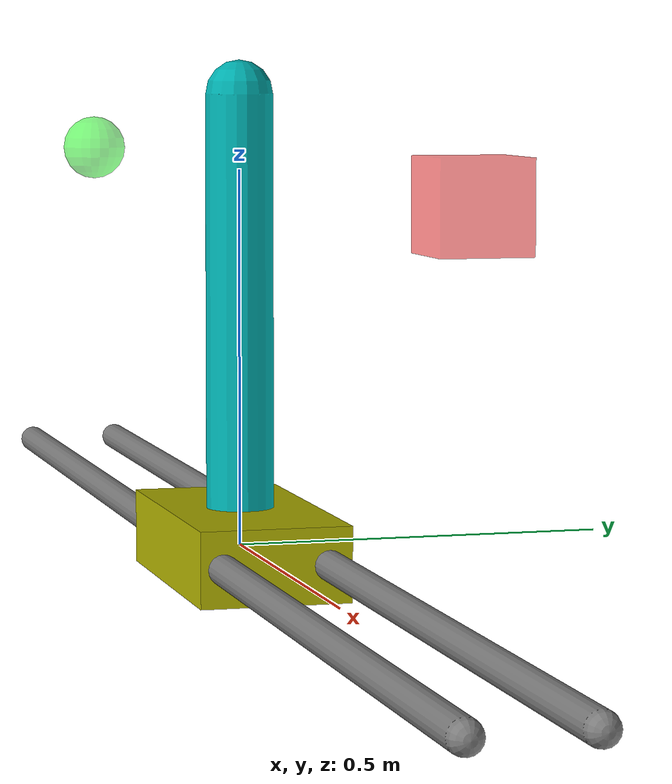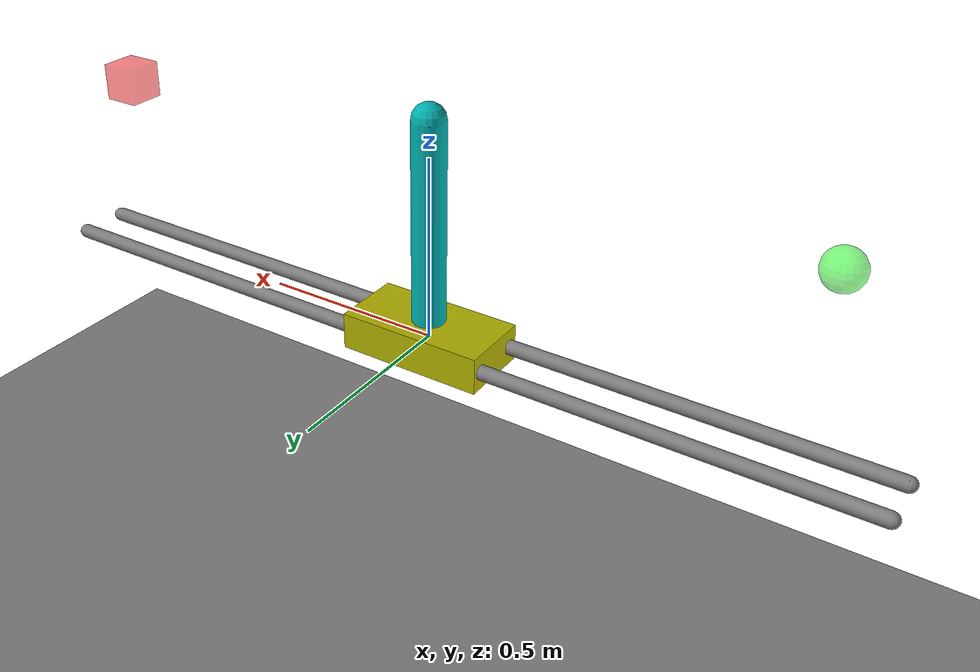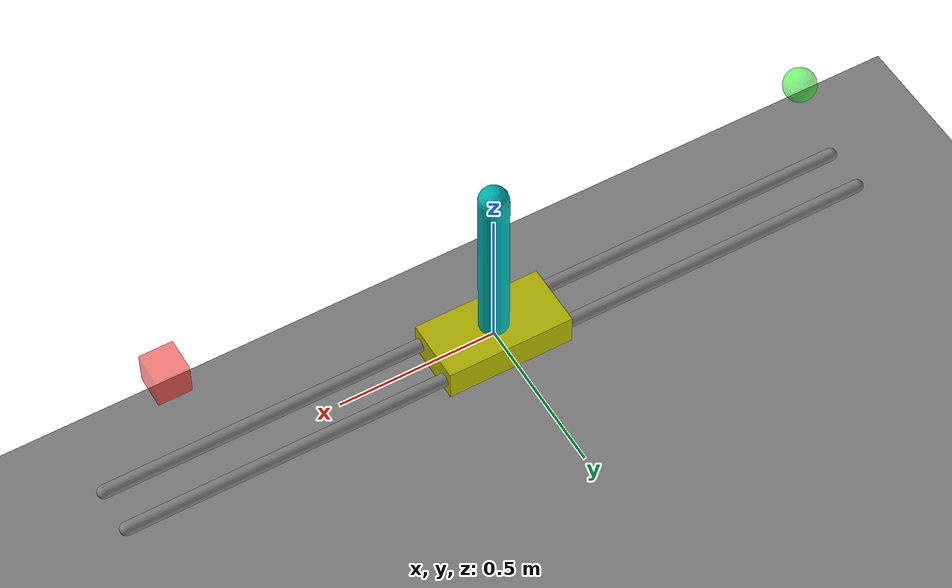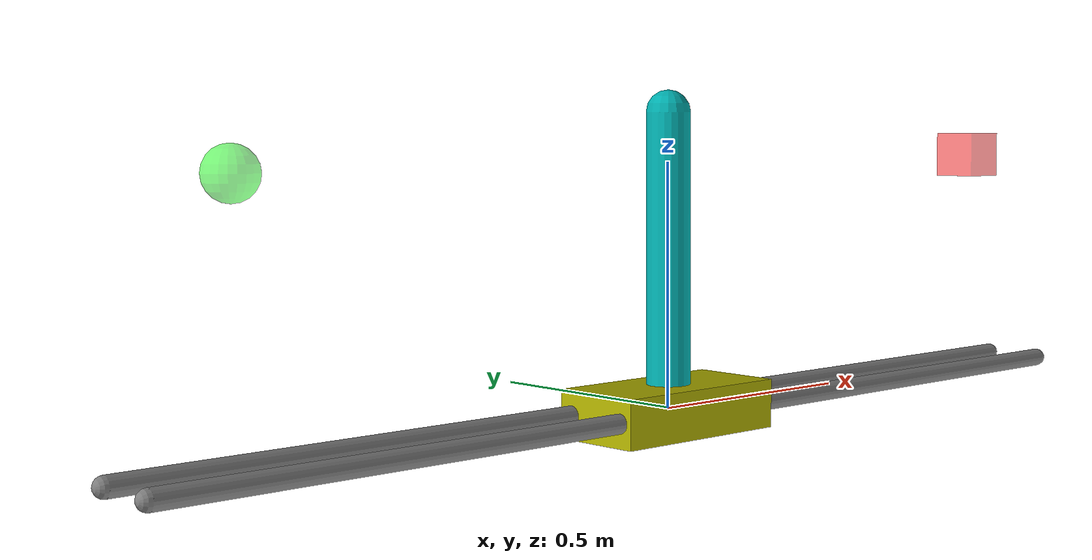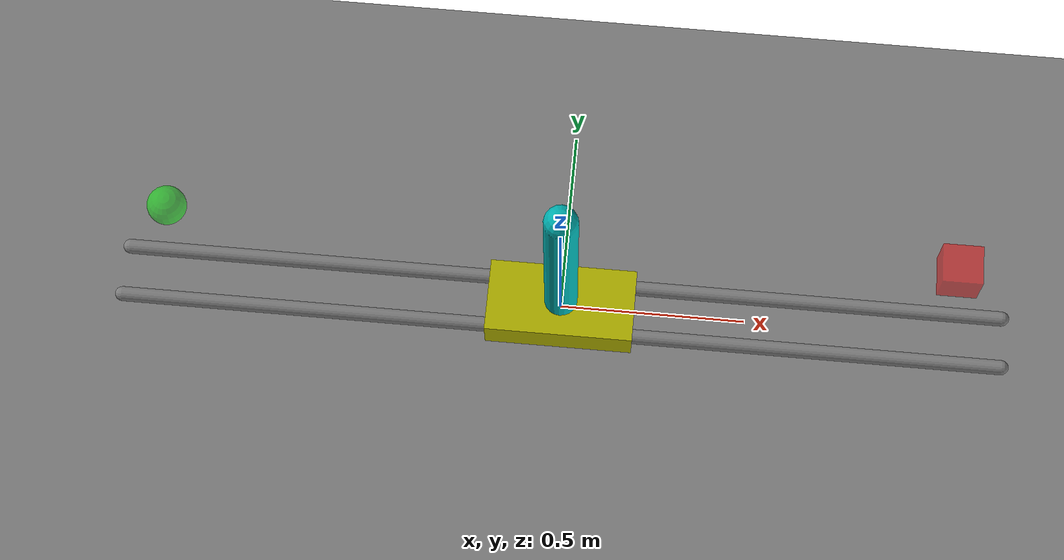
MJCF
<mujoco model='test_cartpole'>
    <compiler inertiafromgeom='true' coordinate='local' />

    <size nkey="1" />

    <custom>
        <numeric name="control_timestep" data="0.04" />
        <numeric name="three_numbers" data="1.0 2.0 3.0" />
    </custom>

    <option timestep='0.01' />

    <default>
        <joint damping='0.05' solreflimit='.08 1' />
        <geom contype='0' friction='1 0.1 0.1' />
    </default>

    <worldbody>
        <camera name='fixed' pos='0 -2.5 0' quat='0.707 0.707 0 0' />
        <geom name='floor' pos='0 0 -1' size='4 4 4' type='plane' />
        <geom name='rail1' type='capsule' pos='0 .07 0' quat='0.707 0 0.707 0'
            size='0.02 1.2' />
        <geom name='rail2' type='capsule' pos='0 -.07 0' quat='0.707 0 0.707 0'
            size='0.02 1.2' />
        <body name='cart' pos='0 0 0'>
            <camera name='cart' pos='0 -2.5 0' quat='0.707 0.707 0 0' />
            <joint name='slider' type='slide' limited='true' pos='0 0 0'
                axis='1 0 0' range='-1 1' />
            <geom name='cart' type='box' pos='0 0 0'
                size='0.2 0.1 0.05' rgba='0.7 0.7 0 1' />
            <site name='cart sensor' type='box' pos='0 0 0'
                size='0.2 0.1 0.05' rgba='0.7 0.7 0 0' />
            <body name='pole' pos='0 0 0'>
                <camera name='pole' pos='0 -2.5 0' quat='0.707 0.707 0 0' />
                <joint name='hinge' type='hinge' pos='0 0 0' axis='0 1 0' />
                <geom name='cpole' type='capsule' fromto='0 0 0 0 0 0.6'
                    size='0.045 0.3' rgba='0 0.7 0.7 1' />
                <site type='sphere' size='.01' name='tip' pos='.001 0 .6' />
            </body>
        </body>
        <body name='mocap1' pos='1 0 0.5' mocap='true'>
            <geom name='mocap_cube' type='box' size='0.05 0.05 0.05' rgba='1 0 0 0.5' />
        </body>
        <body name='mocap2' pos='-1 0 0.5' mocap='true'>
            <geom name='mocap_sphere' type='sphere' size='0.05' rgba='0 1 0 0.5' />
        </body>
    </worldbody>

    <actuator>
        <motor name='slide' joint='slider' gear='50' ctrllimited='true' ctrlrange='-1 1' />
    </actuator>

    <sensor>
        <accelerometer name="accelerometer" site="cart sensor" />
        <touch name="collision" site="cart sensor" />
    </sensor>

    <keyframe>
        <key name="hanging_down" qpos="0 1.57" />
    </keyframe>

</mujoco>
